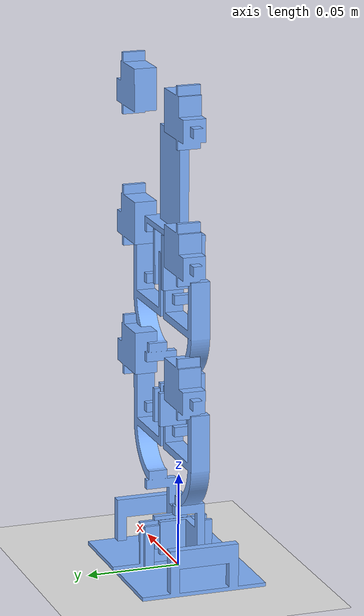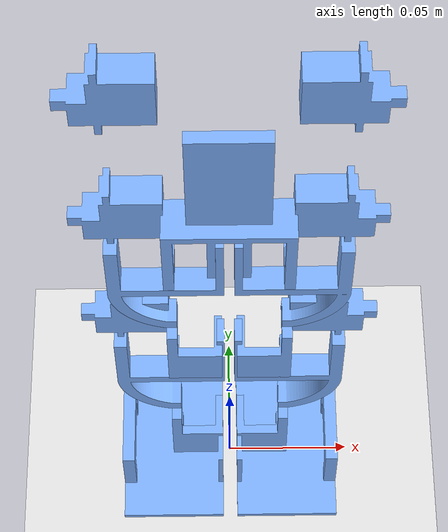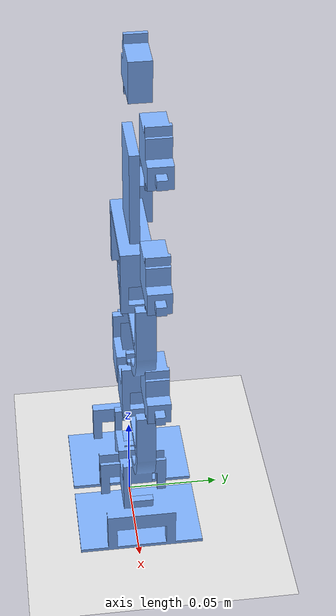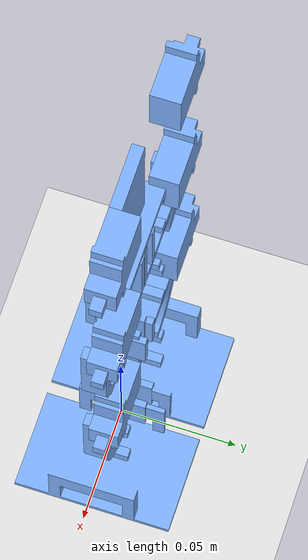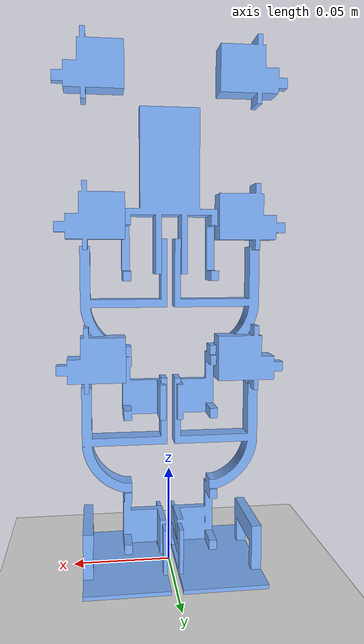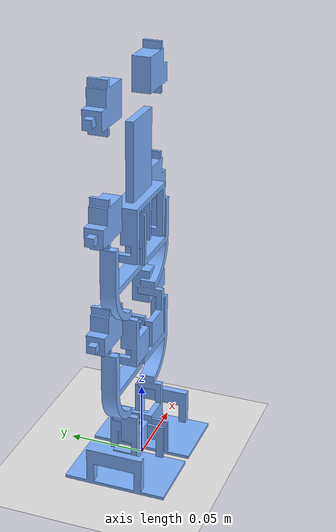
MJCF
<?xml version="1.0" ?>
<mujoco model="assemblyDerived_v7">
  <default>
    <mesh scale="0.001 0.001 0.001"/>
    <geom rgba="0.5 0.7 1.0 1"/>
    <position kp="0.2"/>
  </default>
  <asset>
    <mesh file="meshes/derivedBody_v1_1.stl" name="derivedBody_v1_1_mesh"/>
    <mesh file="meshes/servo_v9_1.stl" name="servo_v9_1_mesh"/>
    <mesh file="meshes/derivedLeg_v1_1.stl" name="derivedLeg_v1_1_mesh"/>
    <mesh file="meshes/servo_v9_3.stl" name="servo_v9_3_mesh"/>
    <mesh file="meshes/derivedLeg_v1_2.stl" name="derivedLeg_v1_2_mesh"/>
    <mesh file="meshes/servo_v9_5.stl" name="servo_v9_5_mesh"/>
    <mesh file="meshes/derivedFoot_v2_1.stl" name="derivedFoot_v2_1_mesh"/>
    <mesh file="meshes/servo_v9_2.stl" name="servo_v9_2_mesh"/>
    <mesh file="meshes/derivedLeg_v1(Mirror)_1.stl" name="derivedLeg_v1(Mirror)_1_mesh"/>
    <mesh file="meshes/servo_v9_4.stl" name="servo_v9_4_mesh"/>
    <mesh file="meshes/derivedLeg_v1(Mirror)_2.stl" name="derivedLeg_v1(Mirror)_2_mesh"/>
    <mesh file="meshes/servo_v9_6.stl" name="servo_v9_6_mesh"/>
    <mesh file="meshes/derivedFoot_v2(Mirror)_1.stl" name="derivedFoot_v2(Mirror)_1_mesh"/>
  </asset>
  <actuator>
    <position name="derivedLeg_v1_1Revolute_3" joint="derivedLeg_v1_1Revolute_3"/>
    <position name="derivedLeg_v1_2Revolute_7" joint="derivedLeg_v1_2Revolute_7"/>
    <position name="derivedFoot_v2_1Revolute_11" joint="derivedFoot_v2_1Revolute_11"/>
    <position name="derivedLeg_v1(Mirror)_1Revolute_4" joint="derivedLeg_v1(Mirror)_1Revolute_4"/>
    <position name="derivedLeg_v1(Mirror)_2Revolute_8" joint="derivedLeg_v1(Mirror)_2Revolute_8"/>
    <position name="derivedFoot_v2(Mirror)_1Revolute_12" joint="derivedFoot_v2(Mirror)_1Revolute_12"/>
  </actuator>
  <worldbody>
    <geom type="plane" size="1 1 0.1" rgba="0.9 0.9 0.9 1"/>
    <light mode="targetbodycom" target="body" diffuse=".8 .8 .8" specular="0.3 0.3 0.3" pos="0 -6 4" cutoff="30"/>
    <body name="body" pos="0 0 0.2344">
      <freejoint name="root"/>
      <geom type="mesh" mesh="derivedBody_v1_1_mesh"/>
      <body name="servo_v9_1">
        <geom type="mesh" mesh="servo_v9_1_mesh"/>
        <body name="derivedLeg_v1_1">
          <joint axis="1 0 0" name="derivedLeg_v1_1Revolute_3" type="hinge" pos="-0.0399 0.0043 -0.0744"/>
          <geom type="mesh" mesh="derivedLeg_v1_1_mesh"/>
          <body name="servo_v9_3">
            <geom type="mesh" mesh="servo_v9_3_mesh"/>
            <body name="derivedLeg_v1_2">
              <joint axis="1 0 0" name="derivedLeg_v1_2Revolute_7" type="hinge" pos="-0.0399 0.0043 -0.1444"/>
              <geom type="mesh" mesh="derivedLeg_v1_2_mesh"/>
              <body name="servo_v9_5">
                <geom type="mesh" mesh="servo_v9_5_mesh"/>
                <body name="derivedFoot_v2_1">
                  <joint axis="1 0 0" name="derivedFoot_v2_1Revolute_11" type="hinge" pos="-0.0399 0.0043 -0.2144"/>
                  <geom type="mesh" mesh="derivedFoot_v2_1_mesh"/>
                </body>
              </body>
            </body>
          </body>
        </body>
      </body>
      <body name="servo_v9_2">
        <geom type="mesh" mesh="servo_v9_2_mesh"/>
        <body name="derivedLeg_v1(Mirror)_1">
          <joint axis="1 0 0" name="derivedLeg_v1(Mirror)_1Revolute_4" type="hinge" pos="0.0399 0.0043 -0.0744"/>
          <geom type="mesh" mesh="derivedLeg_v1(Mirror)_1_mesh"/>
          <body name="servo_v9_4">
            <geom type="mesh" mesh="servo_v9_4_mesh"/>
            <body name="derivedLeg_v1(Mirror)_2">
              <joint axis="1 0 0" name="derivedLeg_v1(Mirror)_2Revolute_8" type="hinge" pos="0.0399 0.0043 -0.1444"/>
              <geom type="mesh" mesh="derivedLeg_v1(Mirror)_2_mesh"/>
              <body name="servo_v9_6">
                <geom type="mesh" mesh="servo_v9_6_mesh"/>
                <body name="derivedFoot_v2(Mirror)_1">
                  <joint axis="1 0 0" name="derivedFoot_v2(Mirror)_1Revolute_12" type="hinge" pos="0.0399 0.0043 -0.2144"/>
                  <geom type="mesh" mesh="derivedFoot_v2(Mirror)_1_mesh"/>
                </body>
              </body>
            </body>
          </body>
        </body>
      </body>
    </body>
  </worldbody>
</mujoco>
